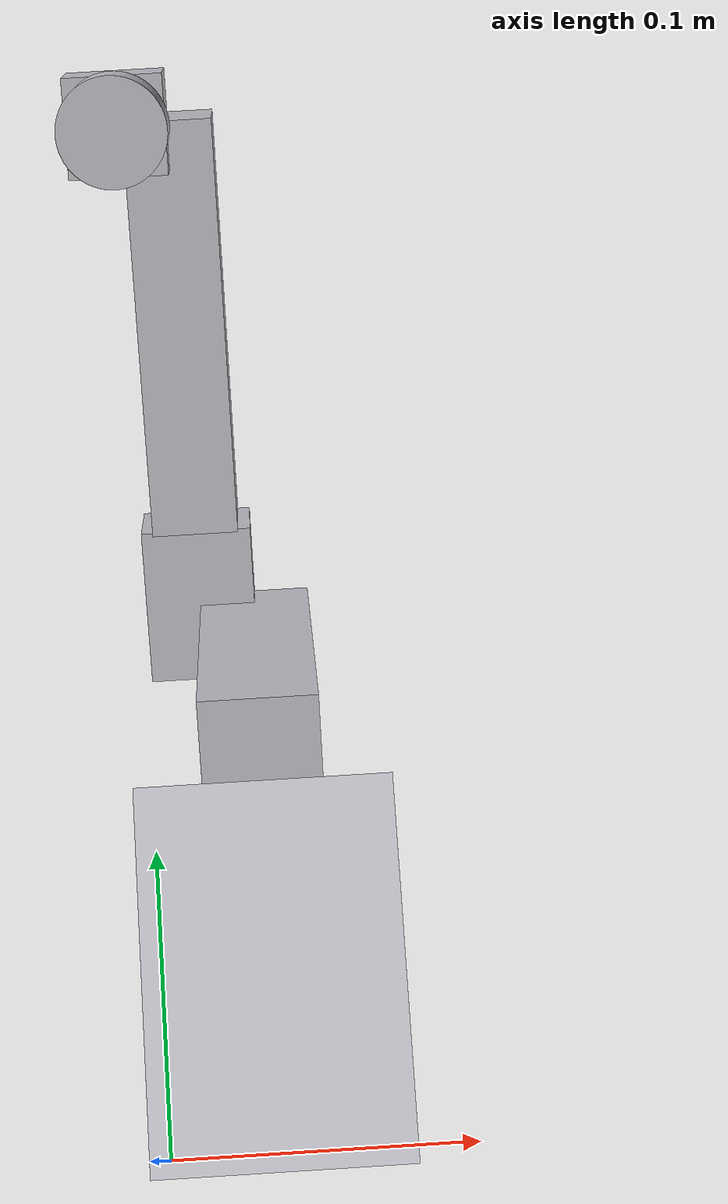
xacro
<?xml version="1.0" ?>
<robot name="Robot" xmlns:xacro="http://www.ros.org/wiki/xacro">

<xacro:include filename="$(find Robot_description)/urdf/materials.xacro" />
<xacro:include filename="$(find Robot_description)/urdf/Robot.trans" />
<xacro:include filename="$(find Robot_description)/urdf/Robot.gazebo" />
<link name="base_link">
  <inertial>
    <origin xyz="-0.017085323779649976 0.06615644857238358 0.004570619788719565" rpy="0 0 0"/>
    <mass value="0.50625"/>
    <inertia ixx="0.000448" iyy="0.000264" izz="0.000659" ixy="-0.0" iyz="0.0" ixz="0.0"/>
  </inertial>
  <visual>
    <origin xyz="0 0 0" rpy="0 0 0"/>
    <geometry>
      <mesh filename="file://$(find Robot_description)/meshes/base_link.stl" scale="0.001 0.001 0.001"/>
    </geometry>
    <material name="silver"/>
  </visual>
  <collision>
    <origin xyz="0 0 0" rpy="0 0 0"/>
    <geometry>
      <mesh filename="file://$(find Robot_description)/meshes/base_link.stl" scale="0.001 0.001 0.001"/>
    </geometry>
  </collision>
</link>

<link name="Shoulder_1">
  <inertial>
    <origin xyz="-3.2377964984467433e-07 4.485723836683553e-07 0.03999961978871948" rpy="0 0 0"/>
    <mass value="1.7819999999999998"/>
    <inertia ixx="0.002747" iyy="0.001786" izz="0.002632" ixy="-0.0" iyz="0.0" ixz="0.0"/>
  </inertial>
  <visual>
    <origin xyz="0.017085 -0.066156 -0.017071" rpy="0 0 0"/>
    <geometry>
      <mesh filename="file://$(find Robot_description)/meshes/Shoulder_1.stl" scale="0.001 0.001 0.001"/>
    </geometry>
    <material name="silver"/>
  </visual>
  <collision>
    <origin xyz="0.017085 -0.066156 -0.017071" rpy="0 0 0"/>
    <geometry>
      <mesh filename="file://$(find Robot_description)/meshes/Shoulder_1.stl" scale="0.001 0.001 0.001"/>
    </geometry>
  </collision>
</link>

<link name="Arm_1">
  <inertial>
    <origin xyz="-3.237796496434464e-07 0.03832576611968912 -0.04138177741942458" rpy="0 0 0"/>
    <mass value="0.259875"/>
    <inertia ixx="0.000276" iyy="0.000226" izz="0.000102" ixy="0.0" iyz="0.000108" ixz="-0.0"/>
  </inertial>
  <visual>
    <origin xyz="0.017085 -0.121156 -0.097071" rpy="0 0 0"/>
    <geometry>
      <mesh filename="file://$(find Robot_description)/meshes/Arm_1.stl" scale="0.001 0.001 0.001"/>
    </geometry>
    <material name="silver"/>
  </visual>
  <collision>
    <origin xyz="0.017085 -0.121156 -0.097071" rpy="0 0 0"/>
    <geometry>
      <mesh filename="file://$(find Robot_description)/meshes/Arm_1.stl" scale="0.001 0.001 0.001"/>
    </geometry>
  </collision>
</link>

<link name="Elbow_1">
  <inertial>
    <origin xyz="-0.01750032377964941 8.366699444373182e-08 -1.7462756856864714e-07" rpy="0 0 0"/>
    <mass value="0.12862992131466744"/>
    <inertia ixx="3.5e-05" iyy="2.6e-05" izz="3.5e-05" ixy="0.0" iyz="-8e-06" ixz="-0.0"/>
  </inertial>
  <visual>
    <origin xyz="0.017085 -0.197807 -0.014308" rpy="0 0 0"/>
    <geometry>
      <mesh filename="file://$(find Robot_description)/meshes/Elbow_1.stl" scale="0.001 0.001 0.001"/>
    </geometry>
    <material name="silver"/>
  </visual>
  <collision>
    <origin xyz="0.017085 -0.197807 -0.014308" rpy="0 0 0"/>
    <geometry>
      <mesh filename="file://$(find Robot_description)/meshes/Elbow_1.stl" scale="0.001 0.001 0.001"/>
    </geometry>
  </collision>
</link>

<link name="Forearm_1">
  <inertial>
    <origin xyz="-3.2377964932772674e-07 0.05629137000759388 0.03249982537243158" rpy="0 0 0"/>
    <mass value="0.33443779541813556"/>
    <inertia ixx="0.000505" iyy="0.000164" izz="0.000382" ixy="-0.0" iyz="-0.000189" ixz="0.0"/>
  </inertial>
  <visual>
    <origin xyz="0.034585 -0.219458 -0.026808" rpy="0 0 0"/>
    <geometry>
      <mesh filename="file://$(find Robot_description)/meshes/Forearm_1.stl" scale="0.001 0.001 0.001"/>
    </geometry>
    <material name="silver"/>
  </visual>
  <collision>
    <origin xyz="0.034585 -0.219458 -0.026808" rpy="0 0 0"/>
    <geometry>
      <mesh filename="file://$(find Robot_description)/meshes/Forearm_1.stl" scale="0.001 0.001 0.001"/>
    </geometry>
  </collision>
</link>

<link name="Wrist_1">
  <inertial>
    <origin xyz="-0.015000323779649112 2.1253582116464997e-08 2.6993865948066187e-07" rpy="0 0 0"/>
    <mass value="0.06074999999999999"/>
    <inertia ixx="8e-06" iyy="8e-06" izz="9e-06" ixy="0.0" iyz="-1e-06" ixz="0.0"/>
  </inertial>
  <visual>
    <origin xyz="0.034585 -0.323291 -0.106963" rpy="0 0 0"/>
    <geometry>
      <mesh filename="file://$(find Robot_description)/meshes/Wrist_1.stl" scale="0.001 0.001 0.001"/>
    </geometry>
    <material name="silver"/>
  </visual>
  <collision>
    <origin xyz="0.034585 -0.323291 -0.106963" rpy="0 0 0"/>
    <geometry>
      <mesh filename="file://$(find Robot_description)/meshes/Wrist_1.stl" scale="0.001 0.001 0.001"/>
    </geometry>
  </collision>
</link>

<link name="Hand_1">
  <inertial>
    <origin xyz="-3.2377964907792656e-07 -0.004999978746417888 0.008659841523809358" rpy="0 0 0"/>
    <mass value="0.04542789090644452"/>
    <inertia ixx="5e-06" iyy="5e-06" izz="6e-06" ixy="-0.0" iyz="-1e-06" ixz="-0.0"/>
  </inertial>
  <visual>
    <origin xyz="0.049585 -0.317041 -0.117789" rpy="0 0 0"/>
    <geometry>
      <mesh filename="file://$(find Robot_description)/meshes/Hand_1.stl" scale="0.001 0.001 0.001"/>
    </geometry>
    <material name="silver"/>
  </visual>
  <collision>
    <origin xyz="0.049585 -0.317041 -0.117789" rpy="0 0 0"/>
    <geometry>
      <mesh filename="file://$(find Robot_description)/meshes/Hand_1.stl" scale="0.001 0.001 0.001"/>
    </geometry>
  </collision>
</link>

<joint name="Rev8" type="continuous">
  <origin xyz="-0.017085 0.066156 0.017071" rpy="0 0 0"/>
  <parent link="base_link"/>
  <child link="Shoulder_1"/>
  <axis xyz="0.0 0.0 1.0"/>
</joint>

<joint name="Rev9" type="continuous">
  <origin xyz="0.0 0.055 0.08" rpy="0 0 0"/>
  <parent link="Shoulder_1"/>
  <child link="Arm_1"/>
  <axis xyz="-1.0 -0.0 -0.0"/>
</joint>

<joint name="Rev10" type="continuous">
  <origin xyz="0.0 0.076651 -0.082763" rpy="0 0 0"/>
  <parent link="Arm_1"/>
  <child link="Elbow_1"/>
  <axis xyz="1.0 0.0 0.0"/>
</joint>

<joint name="Rev11" type="continuous">
  <origin xyz="-0.0175 0.021651 0.0125" rpy="0 0 0"/>
  <parent link="Elbow_1"/>
  <child link="Forearm_1"/>
  <axis xyz="0.0 0.866025 0.5"/>
</joint>

<joint name="Rev12" type="continuous">
  <origin xyz="0.0 0.103833 0.080155" rpy="0 0 0"/>
  <parent link="Forearm_1"/>
  <child link="Wrist_1"/>
  <axis xyz="1.0 -0.0 -0.0"/>
</joint>

<joint name="Rev13" type="continuous">
  <origin xyz="-0.015 -0.00625 0.010826" rpy="0 0 0"/>
  <parent link="Wrist_1"/>
  <child link="Hand_1"/>
  <axis xyz="0.0 -0.5 0.866025"/>
</joint>

</robot>

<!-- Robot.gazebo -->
<robot name="Robot" xmlns:xacro="http://www.ros.org/wiki/xacro" >

<xacro:property name="body_color" value="Gazebo/Silver" />

<gazebo>
  <plugin name="control" filename="libgazebo_ros_control.so"/>
</gazebo>
<gazebo reference="base_link">
  <material>${body_color}</material>
  <mu1>0.2</mu1>
  <mu2>0.2</mu2>
  <self_collide>true</self_collide>
  <gravity>true</gravity>
</gazebo>

<gazebo reference="Shoulder_1">
  <material>${body_color}</material>
  <mu1>0.2</mu1>
  <mu2>0.2</mu2>
  <self_collide>true</self_collide>
</gazebo>

<gazebo reference="Arm_1">
  <material>${body_color}</material>
  <mu1>0.2</mu1>
  <mu2>0.2</mu2>
  <self_collide>true</self_collide>
</gazebo>

<gazebo reference="Elbow_1">
  <material>${body_color}</material>
  <mu1>0.2</mu1>
  <mu2>0.2</mu2>
  <self_collide>true</self_collide>
</gazebo>

<gazebo reference="Forearm_1">
  <material>${body_color}</material>
  <mu1>0.2</mu1>
  <mu2>0.2</mu2>
  <self_collide>true</self_collide>
</gazebo>

<gazebo reference="Wrist_1">
  <material>${body_color}</material>
  <mu1>0.2</mu1>
  <mu2>0.2</mu2>
  <self_collide>true</self_collide>
</gazebo>

<gazebo reference="Hand_1">
  <material>${body_color}</material>
  <mu1>0.2</mu1>
  <mu2>0.2</mu2>
  <self_collide>true</self_collide>
</gazebo>

</robot>
